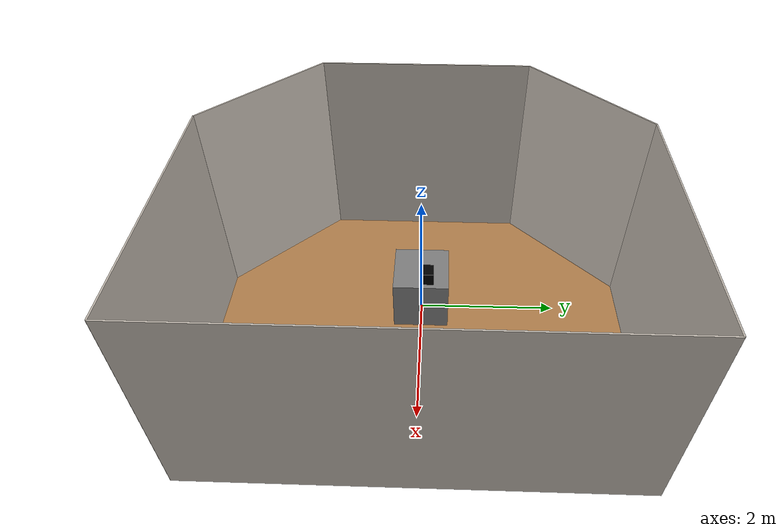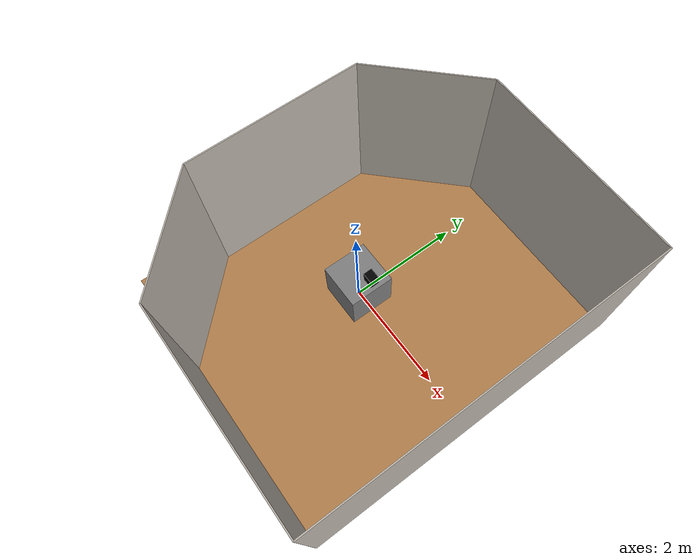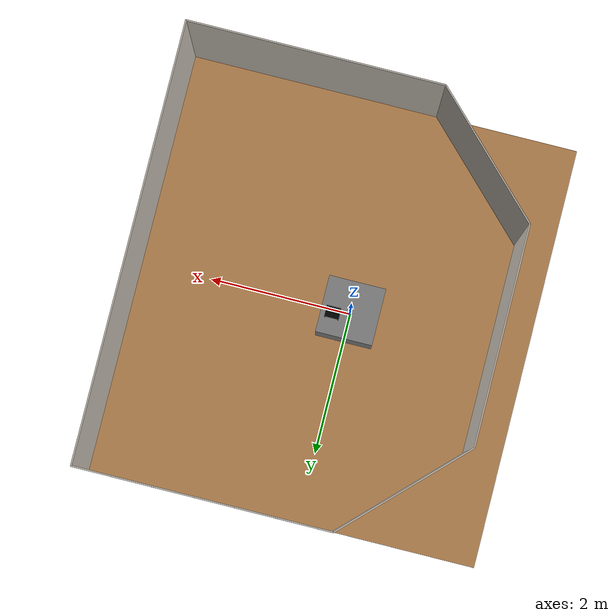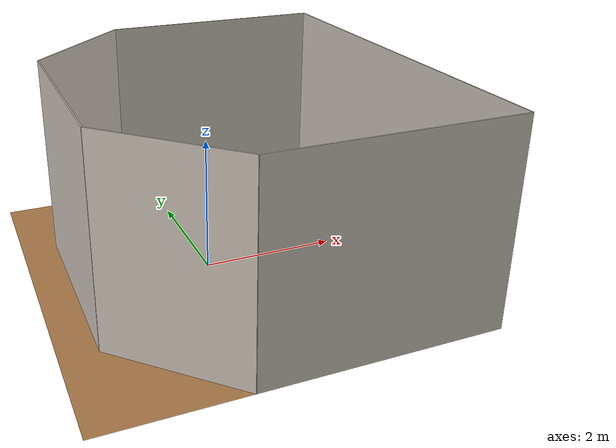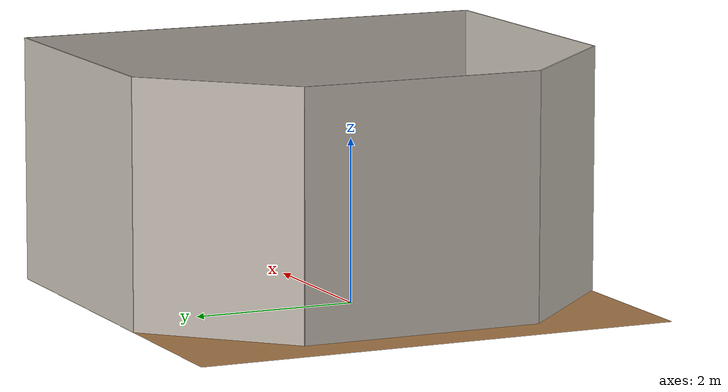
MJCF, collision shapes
<mujoco model="pegs_arena">
  <asset>
    <texture builtin="gradient" height="256" rgb1=".9 .9 1." rgb2=".2 .3 .4" type="skybox" width="256"/>
    <texture file="../textures/wood-tiles.png" type="2d" name="texplane"/>
    <material name="floorplane" reflectance="0.01" shininess="0.0" specular="0.0" texrepeat="2 2" texture="texplane" texuniform="true"/>
    <texture file="../textures/steel-scratched.png" type="cube" name="steel-metal"/>
    <texture file="../textures/brass-ambra.png" type="cube" name="brass-metal"/>
    <material name="smetal" reflectance="1.0" shininess="1.0" specular="1.0" texrepeat="1 1" texture="steel-metal" texuniform="true"/>
    <material name="bmetal"  reflectance="1.0" shininess="1.0" specular="1.0" texrepeat="1 1" texture="brass-metal" texuniform="true"/>
    <!-- ceramic table texture and material-->
    <texture file="../textures/ceramic.png" type="cube" name="tex-ceramic"/>
    <material name="table_ceramic" reflectance="0.0" shininess="0.0" specular="0.2" texrepeat="1 1" texture="tex-ceramic" />
    <!-- steel legs -->
    <texture file="../textures/steel-brushed.png" type="cube" name="tex-steel-brushed"/>
    <material name="table_legs_metal" reflectance="0.8" shininess="0.8" texrepeat="1 1" texture="tex-steel-brushed" />
    <!-- plaster walls -->
    <texture file="../textures/cream-plaster.png" type="2d" name="tex-cream-plaster"/>
    <material name="walls_mat" reflectance="0.0" shininess="0.1" specular="0.1" texrepeat="3 3" texture="tex-cream-plaster" texuniform="true" />
    <!-- added table texture and material for domain randomization -->
    <texture  name="textable" builtin="flat" height="512" width="512" rgb1="0.5 0.5 0.5" rgb2="0.5 0.5 0.5"/>
    <material name="table_mat" texture="textable" />
    <mesh file="../objects/container/0.stl" name="part0" scale="0.01 0.01 0.01" />
    <mesh file="../objects/container/4.stl" name="part4" scale="0.01 0.01 0.01" />
    <mesh file="../objects/container/3.stl" name="part3" scale="0.01 0.01 0.01" />
    <mesh file="../objects/container/2.stl" name="part2" scale="0.01 0.01 0.01" />
    <mesh file="../objects/container/1.stl" name="part1" scale="0.01 0.01 0.01" />
  </asset>
  <worldbody>
    <!-- Floor -->
    <geom condim="3" material="floorplane" name="floor" pos="0 0 0" size="3 3 .125" type="plane"/>
    <!-- Walls (visual only) -->
    <geom pos="-1.25 2.25 1.5" quat="0.6532815 0.6532815 0.2705981 0.2705981" size="1.06 1.5 0.01" type="box" conaffinity="0" contype="0" group="1" name="wall_leftcorner_visual" material="walls_mat"/>
    <geom pos="-1.25 -2.25 1.5" quat="0.6532815 0.6532815 -0.2705981 -0.2705981" size="1.06 1.5 0.01" type="box" conaffinity="0" contype="0" group="1" name="wall_rightcorner_visual" material="walls_mat"/>
    <geom pos="1.25 3 1.5" quat="0.7071 0.7071 0 0" size="1.75 1.5 0.01" type="box" conaffinity="0" contype="0" group="1" name="wall_left_visual" material="walls_mat"/>
    <geom pos="1.25 -3 1.5" quat="0.7071 -0.7071 0 0" size="1.75 1.5 0.01" type="box" conaffinity="0" contype="0" group="1" name="wall_right_visual" material="walls_mat"/>
    <geom pos="-2 0 1.5" quat="0.5 0.5 0.5 0.5" size="1.5 1.5 0.01" type="box" conaffinity="0" contype="0" group="1" name="wall_rear_visual" material="walls_mat"/>
    <geom pos="3 0 1.5" quat="0.5 0.5 -0.5 -0.5" size="3 1.5 0.01" type="box" conaffinity="0" contype="0" group="1" name="wall_front_visual" material="walls_mat"/>
    <!-- Table body -->
    <body name="table" pos="0 0 0.4">
      <geom pos="0 0 0" size="0.4 0.4 0.4" type="box" group="1" name="table_collision" friction="1 0.005 0.0001"/>
      <geom pos="0 0 0" size="0.4 0.4 0.4" type="box" conaffinity="0" contype="0" group="1" name="table_visual" material="table_ceramic"/>
      <site pos="0 0 0.4" name="table_top" size="0.001 0.001 0.001" rgba="0 0 0 0"/>
      <!-- Legs (visual only) -->
      <geom pos="0 0 0" size="0.05 0.1" type="cylinder" conaffinity="0" contype="0" group="1" name="table_leg1_visual" material="table_legs_metal"/>
      <geom pos="0 0 0" size="0.05 0.1" type="cylinder" conaffinity="0" contype="0" group="1" name="table_leg2_visual" material="table_legs_metal"/>
      <geom pos="0 0 0" size="0.05 0.1" type="cylinder" conaffinity="0" contype="0" group="1" name="table_leg3_visual" material="table_legs_metal"/>
      <geom pos="0 0 0" size="0.05 0.1" type="cylinder" conaffinity="0" contype="0" group="1" name="table_leg4_visual" material="table_legs_metal"/>
    </body>
    <body name="container" pos="0.23 0.1 1.">
        <body name="0_part0" pos="0.0 -2e-09 -0.0" quat="1 0 0 0">
            <geom conaffinity="0" contype="0" density="0" mesh="part0" name="0_part0_mesh" pos="0.0 0.0 0.0" rgba="0.82 0.71 0.55 1" type="mesh" group="1"/>
            <geom density="50" name="noviz_collision_0_part0_0" pos="0.0 0.0028000000000000004 1.66e-05" quat="1 0 0 0" rgba="0 0 0 0" size="0.1 0.0775 0.0049" solref="0.001 1" type="box" group="1"/>
            <geom density="50" name="noviz_collision_0_part0_1" pos="0.0 -0.0775 0.0022" quat="1 0 0 0" rgba="0 0 0 0" size="0.1 0.0025 0.0025" solref="0.001 1" type="box" group="1"/>
        </body>
        <body name="4_part4" pos="0.0 -0.076250003 -0.145" quat="1 0 0 0">
            <geom conaffinity="0" contype="0" density="0" mesh="part4" name="4_part4_mesh" pos="0.0 0.0 0.0" rgba="0.82 0.71 0.55 1" type="mesh" group="1"/>
            <geom density="50" name="noviz_collision_4_part4_0" pos="0.0 0.0 0.0" quat="1 0 0 0" rgba="0 0 0 0" size="0.1 0.00125 0.145" solref="0.001 1" type="box" group="1"/>
        </body>
        <body name="3_part3" pos="0.094999998 0.0025 -0.145" quat="1 0 0 0">
            <geom conaffinity="0" contype="0" density="0" mesh="part3" name="3_part3_mesh" pos="0.0 0.0 0.0" rgba="0.82 0.71 0.55 1" type="mesh" group="1"/>
            <geom density="50" name="noviz_collision_3_part3_0" pos="0.0 0.0 0.0" quat="1 0 0 0" rgba="0 0 0 0" size="0.005 0.0775 0.14" solref="0.001 1" type="box" group="1"/>
        </body>
        <body name="2_part2" pos="-0.094999997 0.0025 -0.145" quat="1 0 0 0">
            <geom conaffinity="0" contype="0" density="0" mesh="part2" name="2_part2_mesh" pos="0.0 0.0 0.0" rgba="0.82 0.71 0.55 1" type="mesh" group="1"/>
            <geom density="50" name="noviz_collision_2_part2_0" pos="0.0 0.0 0.0" quat="1 0 0 0" rgba="0 0 0 0" size="0.005 0.0775 0.14" solref="0.001 1" type="box" group="1"/>
        </body>
        <body name="1_part1" pos="0.0 -2e-09 -0.29" quat="1 0 0 0">
            <geom conaffinity="0" contype="0" density="0" mesh="part1" name="1_part1_mesh" pos="0.0 0.0 0.0" rgba="0.82 0.71 0.55 1" type="mesh" group="1"/>
            <geom density="50" name="noviz_collision_1_part1_0" pos="0.0 0.0025 -1.66e-05" quat="1 0 0 0" rgba="0 0 0 0" size="0.1 0.0775 0.0049" solref="0.001 1" type="box" group="1"/>
            <geom density="50" name="noviz_collision_1_part1_1" pos="0.0 -0.0776 -0.0026000000000000003" quat="1 0 0 0" rgba="0 0 0 0" size="0.1 0.0025 0.0025" solref="0.001 1" type="box" group="1"/>
        </body>
    </body>
    <light diffuse=".8 .8 .8" dir="0 -.15 -1" directional="false" pos="1 1 4.0" specular="0.3 0.3 0.3" castshadow="false"/>
    <light diffuse=".8 .8 .8" dir="0 -.15 -1" directional="false" pos="-3. -3. 4.0" specular="0.3 0.3 0.3" castshadow="false"/>
    <!-- front view -->
    <camera mode="fixed" name="frontview" pos="1.6 0 1.45" quat="0.56 0.43 0.43 0.56"/>
    <!-- bird view -->
    <camera mode="fixed" name="birdview" pos="-0.2 0 3.0" quat="0.7071 0 0 0.7071"/>
    <!-- agent view -->
    <camera mode="fixed" name="agentview" pos="0.5 0 1.35" quat="0.653 0.271 0.271 0.653"/>
    <!-- side view -->
    <camera mode="fixed" name="sideview" pos="-0.05651774593317116 1.2761224129427358 1.4879572214102434" quat="0.009905065491771751 0.006877963156909582 0.5912228352893879 0.806418094001364" />
  </worldbody>
</mujoco>
